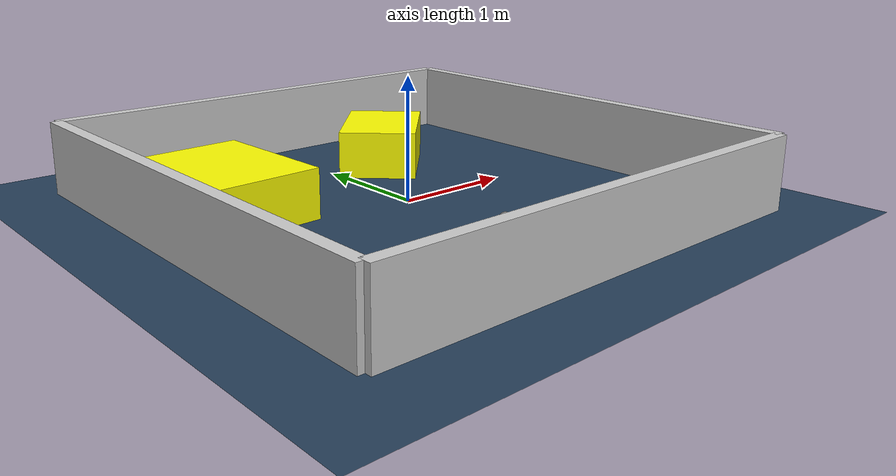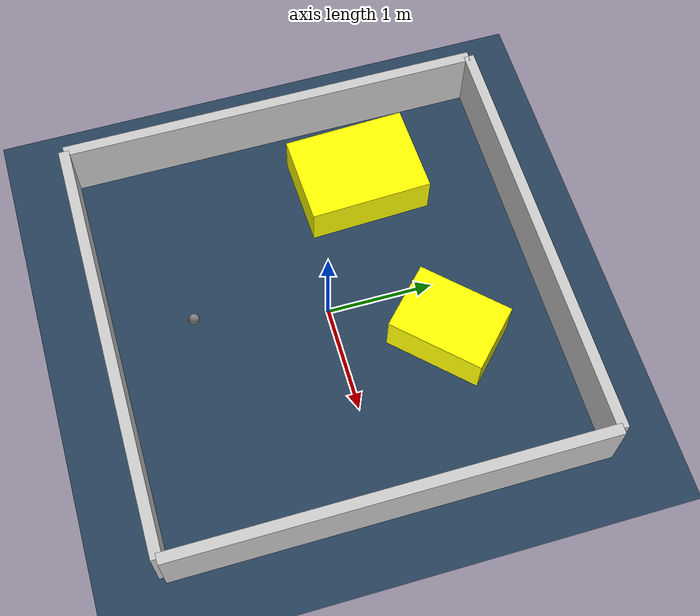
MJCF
<?xml version="1.0" ?>
<mujoco model="generated_environment">
  <option timestep="0.01" integrator="RK4" cone="elliptic"/>
  <default>
    <geom density="1"/>
  </default>
  <asset>
    <texture builtin="gradient" height="3072" rgb1="0.3 0.5 0.7" rgb2="0 0 0" type="skybox" width="512"/>
    <texture builtin="checker" height="300" mark="edge" markrgb="0.8 0.8 0.8" name="groundplane" rgb1="0.2 0.3 0.4" rgb2="0.1 0.2 0.3" type="2d" width="300"/>
    <material name="groundplane" reflectance="0.2" texrepeat="5 5" texture="groundplane" texuniform="true"/>
    <material name="robot" rgba="0.0 1.0 0.0 1"/>
  </asset>
  <worldbody>
    <light dir="0 0 -1" directional="true" pos="0 0 1.5"/>
    <geom condim="4" friction="1.0 0.005 0.001" material="groundplane" name="floor" size="0 0 0.05" type="plane"/>
    <body name="walls">
      <geom name="wall_1" condim="4" pos="-2.0 0.0 0.3" rgba="0.800000011920929 0.800000011920929 0.800000011920929 1.0" size="0.05 2.0 0.3" type="box"/>
      <geom name="wall_2" condim="4" pos="2.0 0.0 0.3" rgba="0.800000011920929 0.800000011920929 0.800000011920929 1.0" size="0.05 2.0 0.3" type="box"/>
      <geom name="wall_3" condim="4" pos="0.0 -2.0 0.3" rgba="0.800000011920929 0.800000011920929 0.800000011920929 1.0" size="2.0 0.05 0.3" type="box"/>
      <geom name="wall_4" condim="4" pos="0.0 2.0 0.3" rgba="0.800000011920929 0.800000011920929 0.800000011920929 1.0" size="2.0 0.05 0.3" type="box"/>
    </body>
    <body name="robot">
      <joint name="joint_x" type="slide" pos="0 0 0" axis="1 0 0"/>
      <joint name="joint_y" type="slide" pos="0 0 0" axis="0 1 0"/>
      <geom name="robot" type="sphere" pos="-0.17106589839915531 -1.2185148332548852 0.2" size="0.05" mass="5." friction="1.0 0.005 0.0001" condim="4"/>
      <site name="sensor_ball"/>
    </body>
    <body name="obstacle_1_movable">
      <geom name="obstacle_1_movable" condim="4" pos="-1.237198813950712 0.6455767016266867 0.2" euler="0 0 182.15966882076054" friction="1.0 0.005 0.001" rgba="1 1 0 1" size="0.4261403015722225 0.5775817697650609 0.2" type="box" mass="0.1"/>
      <joint type="free"/>
    </body>
    <body name="obstacle_2_movable">
      <geom name="obstacle_2_movable" condim="4" pos="0.5315680034072232 0.9817347522987934 0.2" euler="0 0 225.93228244293707" friction="1.0 0.005 0.001" rgba="1 1 0 1" size="0.4556101076072688 0.3274849325516921 0.2" type="box" mass="0.1"/>
      <joint type="free"/>
    </body>
  </worldbody>
  <actuator>
    <motor name="actuator_x" joint="joint_x" gear="1" ctrlrange="-1 1"/>
    <motor name="actuator_y" joint="joint_y" gear="1" ctrlrange="-1 1"/>
  </actuator>
</mujoco>
